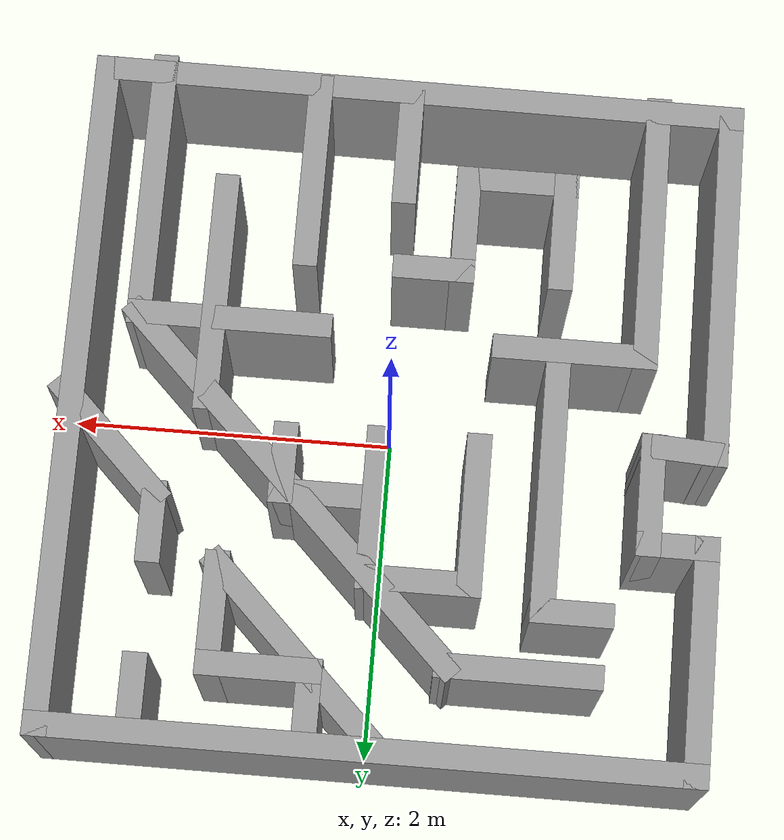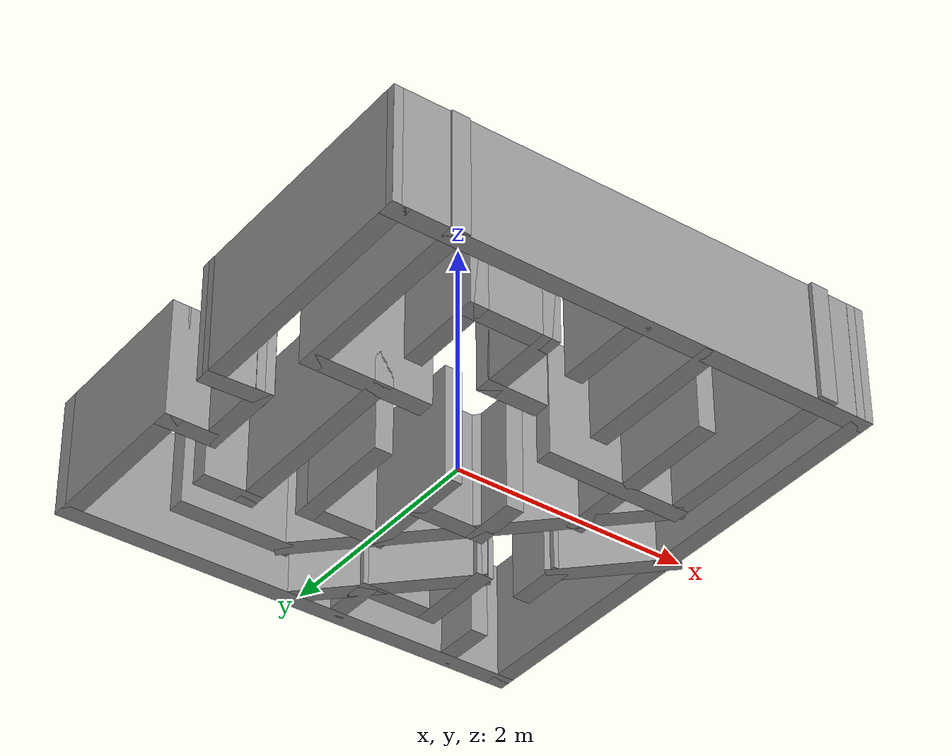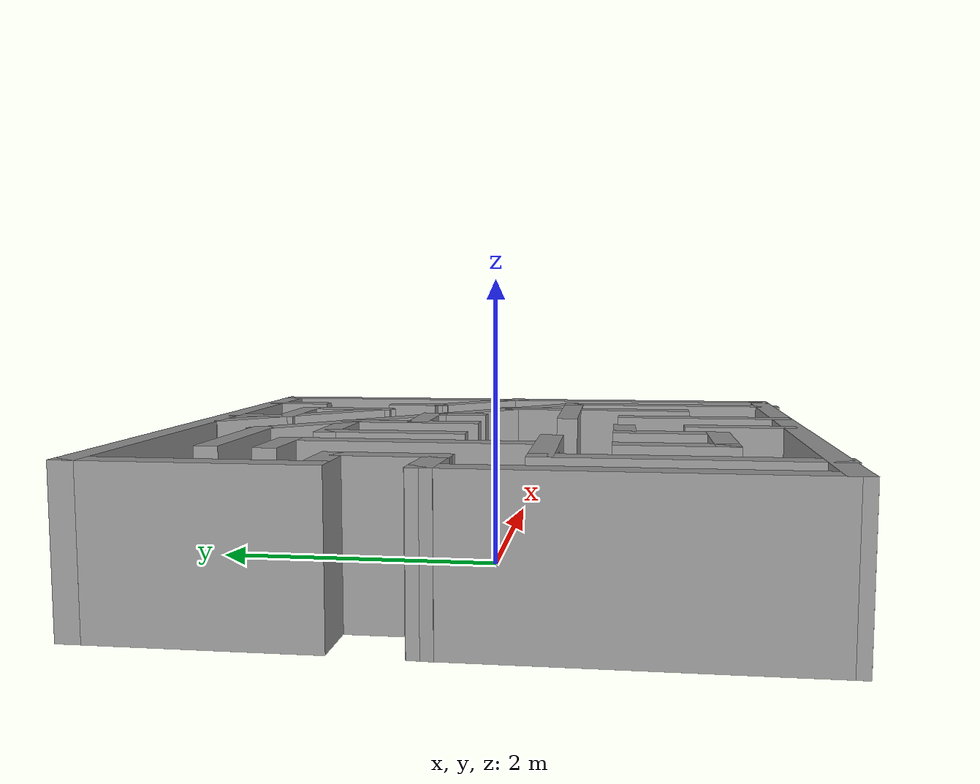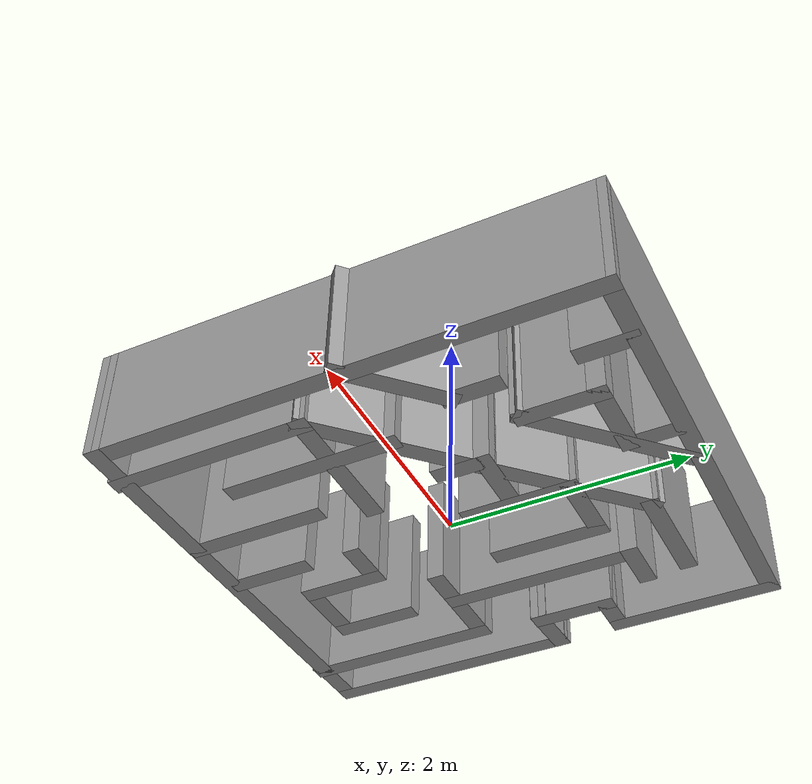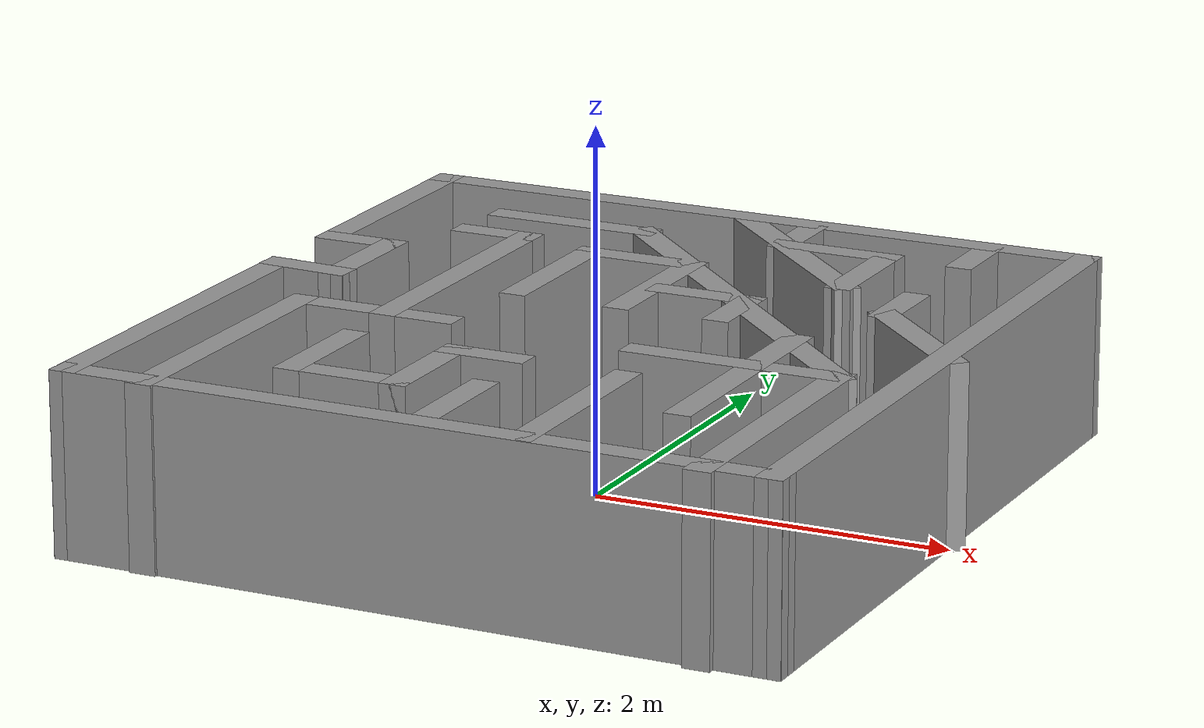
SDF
<?xml version='1.0'?>
<sdf version='1.6'>
  <model name='mazeSWY'>
    <pose frame=''>0.013574 -0.002409 0 0 -0 0</pose>
    <link name='Wall_0'>
      <collision name='Wall_0_Collision'>
        <geometry>
          <box>
            <size>4.03012 0.15 1</size>
          </box>
        </geometry>
        <pose frame=''>0 0 0.5 0 -0 0</pose>
      </collision>
      <visual name='Wall_0_Visual'>
        <pose frame=''>0 0 0.5 0 -0 0</pose>
        <geometry>
          <box>
            <size>4.03012 0.15 1</size>
          </box>
        </geometry>
        <material>
          <script>
            <uri>file://media/materials/scripts/gazebo.material</uri>
            <name>Gazebo/Grey</name>
          </script>
          <ambient>1 1 1 1</ambient>
        </material>
      </visual>
      <pose frame=''>-0.033574 -2.02259 0 0 0 -0.007732</pose>
    </link>
    <link name='Wall_11'>
      <collision name='Wall_11_Collision'>
        <geometry>
          <box>
            <size>1.75 0.15 1</size>
          </box>
        </geometry>
        <pose frame=''>0 0 0.5 0 -0 0</pose>
      </collision>
      <visual name='Wall_11_Visual'>
        <pose frame=''>0 0 0.5 0 -0 0</pose>
        <geometry>
          <box>
            <size>1.75 0.15 1</size>
          </box>
        </geometry>
        <material>
          <script>
            <uri>file://media/materials/scripts/gazebo.material</uri>
            <name>Gazebo/Grey</name>
          </script>
          <ambient>1 1 1 1</ambient>
        </material>
      </visual>
      <pose frame=''>-1.52357 -1.22759 0 0 -0 1.5708</pose>
    </link>

    <link name='Wall_2'>
      <collision name='Wall_2_Collision'>
        <geometry>
          <box>
            <size>4.26001 0.15 1</size>
          </box>
        </geometry>
        <pose frame=''>0 0 0.5 0 -0 0</pose>
      </collision>
      <visual name='Wall_2_Visual'>
        <pose frame=''>0 0 0.5 0 -0 0</pose>
        <geometry>
          <box>
            <size>4.26001 0.15 1</size>
          </box>
        </geometry>
        <material>
          <script>
            <uri>file://media/materials/scripts/gazebo.material</uri>
            <name>Gazebo/Grey</name>
          </script>
          <ambient>1 1 1 1</ambient>
        </material>
      </visual>
      <pose frame=''>1.90143 0.017409 0 0 -0 1.57323</pose>
    </link>
    <link name='Wall_205'>
      <collision name='Wall_205_Collision'>
        <geometry>
          <box>
            <size>1 0.15 1</size>
          </box>
        </geometry>
        <pose frame=''>0 0 0.5 0 -0 0</pose>
      </collision>
      <visual name='Wall_205_Visual'>
        <pose frame=''>0 0 0.5 0 -0 0</pose>
        <geometry>
          <box>
            <size>1 0.15 1</size>
          </box>
        </geometry>
        <material>
          <script>
            <uri>file://media/materials/scripts/gazebo.material</uri>
            <name>Gazebo/Grey</name>
          </script>
          <ambient>1 1 1 1</ambient>
        </material>
      </visual>
      <pose frame=''>-1.09857 -0.427591 0 0 -0 0</pose>
    </link>
    <link name='Wall_21'>
      <collision name='Wall_21_Collision'>
        <geometry>
          <box>
            <size>1.75 0.15 1</size>
          </box>
        </geometry>
        <pose frame=''>0 0 0.5 0 -0 0</pose>
      </collision>
      <visual name='Wall_21_Visual'>
        <pose frame=''>0 0 0.5 0 -0 0</pose>
        <geometry>
          <box>
            <size>1.75 0.15 1</size>
          </box>
        </geometry>
        <material>
          <script>
            <uri>file://media/materials/scripts/gazebo.material</uri>
            <name>Gazebo/Grey</name>
          </script>
          <ambient>1 1 1 1</ambient>
        </material>
      </visual>
      <pose frame=''>-1.00357 0.372409 0 0 -0 1.5708</pose>
    </link>
    <link name='Wall_22'>
      <collision name='Wall_22_Collision'>
        <geometry>
          <box>
            <size>0.5 0.15 1</size>
          </box>
        </geometry>
        <pose frame=''>0 0 0.5 0 -0 0</pose>
      </collision>
      <visual name='Wall_22_Visual'>
        <pose frame=''>0 0 0.5 0 -0 0</pose>
        <geometry>
          <box>
            <size>0.5 0.15 1</size>
          </box>
        </geometry>
        <material>
          <script>
            <uri>file://media/materials/scripts/gazebo.material</uri>
            <name>Gazebo/Grey</name>
          </script>
          <ambient>1 1 1 1</ambient>
        </material>
      </visual>
      <pose frame=''>-1.17857 1.17241 0 0 -0 3.14159</pose>
    </link>
    <link name='Wall_24'>
      <collision name='Wall_24_Collision'>
        <geometry>
          <box>
            <size>0.75 0.15 1</size>
          </box>
        </geometry>
        <pose frame=''>0 0 0.5 0 -0 0</pose>
      </collision>
      <visual name='Wall_24_Visual'>
        <pose frame=''>0 0 0.5 0 -0 0</pose>
        <geometry>
          <box>
            <size>0.75 0.15 1</size>
          </box>
        </geometry>
        <material>
          <script>
            <uri>file://media/materials/scripts/gazebo.material</uri>
            <name>Gazebo/Grey</name>
          </script>
          <ambient>1 1 1 1</ambient>
        </material>
      </visual>
      <pose frame=''>-0.983574 -1.18759 0 0 0 -1.5708</pose>
    </link>
    <link name='Wall_25'>
      <collision name='Wall_25_Collision'>
        <geometry>
          <box>
            <size>0.75 0.15 1</size>
          </box>
        </geometry>
        <pose frame=''>0 0 0.5 0 -0 0</pose>
      </collision>
      <visual name='Wall_25_Visual'>
        <pose frame=''>0 0 0.5 0 -0 0</pose>
        <geometry>
          <box>
            <size>0.75 0.15 1</size>
          </box>
        </geometry>
        <material>
          <script>
            <uri>file://media/materials/scripts/gazebo.material</uri>
            <name>Gazebo/Grey</name>
          </script>
          <ambient>1 1 1 1</ambient>
        </material>
      </visual>
      <pose frame=''>-0.683574 -1.48759 0 0 -0 0</pose>
    </link>
    <link name='Wall_26'>
      <collision name='Wall_26_Collision'>
        <geometry>
          <box>
            <size>0.75 0.15 1</size>
          </box>
        </geometry>
        <pose frame=''>0 0 0.5 0 -0 0</pose>
      </collision>
      <visual name='Wall_26_Visual'>
        <pose frame=''>0 0 0.5 0 -0 0</pose>
        <geometry>
          <box>
            <size>0.75 0.15 1</size>
          </box>
        </geometry>
        <material>
          <script>
            <uri>file://media/materials/scripts/gazebo.material</uri>
            <name>Gazebo/Grey</name>
          </script>
          <ambient>1 1 1 1</ambient>
        </material>
      </visual>
      <pose frame=''>-0.383574 -1.18759 0 0 -0 1.5708</pose>
    </link>
    <link name='Wall_27'>
      <collision name='Wall_27_Collision'>
        <geometry>
          <box>
            <size>0.5 0.15 1</size>
          </box>
        </geometry>
        <pose frame=''>0 0 0.5 0 -0 0</pose>
      </collision>
      <visual name='Wall_27_Visual'>
        <pose frame=''>0 0 0.5 0 -0 0</pose>
        <geometry>
          <box>
            <size>0.5 0.15 1</size>
          </box>
        </geometry>
        <material>
          <script>
            <uri>file://media/materials/scripts/gazebo.material</uri>
            <name>Gazebo/Grey</name>
          </script>
          <ambient>1 1 1 1</ambient>
        </material>
      </visual>
      <pose frame=''>-0.208574 -0.887591 0 0 -0 0</pose>
    </link>
    <link name='Wall_29'>
      <collision name='Wall_29_Collision'>
        <geometry>
          <box>
            <size>1 0.15 1</size>
          </box>
        </geometry>
        <pose frame=''>0 0 0.5 0 -0 0</pose>
      </collision>
      <visual name='Wall_29_Visual'>
        <pose frame=''>0 0 0.5 0 -0 0</pose>
        <geometry>
          <box>
            <size>1 0.15 1</size>
          </box>
        </geometry>
        <material>
          <script>
            <uri>file://media/materials/scripts/gazebo.material</uri>
            <name>Gazebo/Grey</name>
          </script>
          <ambient>1 1 1 1</ambient>
        </material>
      </visual>
      <pose frame=''>-0.888574 1.54241 0 0 -0 0</pose>
    </link>
    <link name='Wall_30'>
      <collision name='Wall_30_Collision'>
        <geometry>
          <box>
            <size>3 0.15 1</size>
          </box>
        </geometry>
        <pose frame=''>0 0 0.5 0 -0 0</pose>
      </collision>
      <visual name='Wall_30_Visual'>
        <pose frame=''>0 0 0.5 0 -0 0</pose>
        <geometry>
          <box>
            <size>3 0.15 1</size>
          </box>
        </geometry>
        <material>
          <script>
            <uri>file://media/materials/scripts/gazebo.material</uri>
            <name>Gazebo/Grey</name>
          </script>
          <ambient>1 1 1 1</ambient>
        </material>
      </visual>
      <pose frame=''>0.543926 0.534909 0 0 0 -0.785398</pose>
    </link>
    <link name='Wall_31'>
      <collision name='Wall_31_Collision'>
        <geometry>
          <box>
            <size>1.75 0.15 1</size>
          </box>
        </geometry>
        <pose frame=''>0 0 0.5 0 -0 0</pose>
      </collision>
      <visual name='Wall_31_Visual'>
        <pose frame=''>0 0 0.5 0 -0 0</pose>
        <geometry>
          <box>
            <size>1.75 0.15 1</size>
          </box>
        </geometry>
        <material>
          <script>
            <uri>file://media/materials/scripts/gazebo.material</uri>
            <name>Gazebo/Grey</name>
          </script>
          <ambient>1 1 1 1</ambient>
        </material>
      </visual>
      <pose frame=''>1.55143 -1.27259 0 0 0 -1.5708</pose>
    </link>
    <link name='Wall_33'>
      <collision name='Wall_33_Collision'>
        <geometry>
          <box>
            <size>0.75 0.15 1</size>
          </box>
        </geometry>
        <pose frame=''>0 0 0.5 0 -0 0</pose>
      </collision>
      <visual name='Wall_33_Visual'>
        <pose frame=''>0 0 0.5 0 -0 0</pose>
        <geometry>
          <box>
            <size>0.75 0.15 1</size>
          </box>
        </geometry>
        <material>
          <script>
            <uri>file://media/materials/scripts/gazebo.material</uri>
            <name>Gazebo/Grey</name>
          </script>
          <ambient>1 1 1 1</ambient>
        </material>
      </visual>
      <pose frame=''>-0.263574 1.05241 0 0 -0 3.14159</pose>
    </link>
    <link name='Wall_34'>
      <collision name='Wall_34_Collision'>
        <geometry>
          <box>
            <size>1 0.15 1</size>
          </box>
        </geometry>
        <pose frame=''>0 0 0.5 0 -0 0</pose>
      </collision>
      <visual name='Wall_34_Visual'>
        <pose frame=''>0 0 0.5 0 -0 0</pose>
        <geometry>
          <box>
            <size>1 0.15 1</size>
          </box>
        </geometry>
        <material>
          <script>
            <uri>file://media/materials/scripts/gazebo.material</uri>
            <name>Gazebo/Grey</name>
          </script>
          <ambient>1 1 1 1</ambient>
        </material>
      </visual>
      <pose frame=''>-0.563574 0.627409 0 0 0 -1.5708</pose>
    </link>
    <link name='Wall_36'>
      <collision name='Wall_36_Collision'>
        <geometry>
          <box>
            <size>1 0.15 1</size>
          </box>
        </geometry>
        <pose frame=''>0 0 0.5 0 -0 0</pose>
      </collision>
      <visual name='Wall_36_Visual'>
        <pose frame=''>0 0 0.5 0 -0 0</pose>
        <geometry>
          <box>
            <size>1 0.15 1</size>
          </box>
        </geometry>
        <material>
          <script>
            <uri>file://media/materials/scripts/gazebo.material</uri>
            <name>Gazebo/Grey</name>
          </script>
          <ambient>1 1 1 1</ambient>
        </material>
      </visual>
      <pose frame=''>0.036426 0.627409 0 0 0 -1.5708</pose>
    </link>
    <link name='Wall_38'>
      <collision name='Wall_38_Collision'>
        <geometry>
          <box>
            <size>0.64 0.15 1</size>
          </box>
        </geometry>
        <pose frame=''>0 0 0.5 0 -0 0</pose>
      </collision>
      <visual name='Wall_38_Visual'>
        <pose frame=''>0 0 0.5 0 -0 0</pose>
        <geometry>
          <box>
            <size>0.64 0.15 1</size>
          </box>
        </geometry>
        <material>
          <script>
            <uri>file://media/materials/scripts/gazebo.material</uri>
            <name>Gazebo/Grey</name>
          </script>
          <ambient>1 1 1 1</ambient>
        </material>
      </visual>
      <pose frame=''>0.351426 0.572409 0 0 -0 0</pose>
    </link>
    <link name='Wall_4'>
      <collision name='Wall_4_Collision'>
        <geometry>
          <box>
            <size>4 0.15 1</size>
          </box>
        </geometry>
        <pose frame=''>0 0 0.5 0 -0 0</pose>
      </collision>
      <visual name='Wall_4_Visual'>
        <pose frame=''>0 0 0.5 0 -0 0</pose>
        <geometry>
          <box>
            <size>4 0.15 1</size>
          </box>
        </geometry>
        <material>
          <script>
            <uri>file://media/materials/scripts/gazebo.material</uri>
            <name>Gazebo/Grey</name>
          </script>
          <ambient>1 1 1 1</ambient>
        </material>
      </visual>
      <pose frame=''>-0.028574 2.07241 0 0 -0 3.14159</pose>
    </link>
    <link name='Wall_42'>
      <collision name='Wall_42_Collision'>
        <geometry>
          <box>
            <size>0.5 0.15 1</size>
          </box>
        </geometry>
        <pose frame=''>0 0 0.5 0 -0 0</pose>
      </collision>
      <visual name='Wall_42_Visual'>
        <pose frame=''>0 0 0.5 0 -0 0</pose>
        <geometry>
          <box>
            <size>0.5 0.15 1</size>
          </box>
        </geometry>
        <material>
          <script>
            <uri>file://media/materials/scripts/gazebo.material</uri>
            <name>Gazebo/Grey</name>
          </script>
          <ambient>1 1 1 1</ambient>
        </material>
      </visual>
      <pose frame=''>0.596426 0.397409 0 0 0 -1.5708</pose>
    </link>
    <link name='Wall_44'>
      <collision name='Wall_44_Collision'>
        <geometry>
          <box>
            <size>1.5 0.15 1</size>
          </box>
        </geometry>
        <pose frame=''>0 0 0.5 0 -0 0</pose>
      </collision>
      <visual name='Wall_44_Visual'>
        <pose frame=''>0 0 0.5 0 -0 0</pose>
        <geometry>
          <box>
            <size>1.5 0.15 1</size>
          </box>
        </geometry>
        <material>
          <script>
            <uri>file://media/materials/scripts/gazebo.material</uri>
            <name>Gazebo/Grey</name>
          </script>
          <ambient>1 1 1 1</ambient>
        </material>
      </visual>
      <pose frame=''>1.09643 -0.642591 0 0 0 -1.5708</pose>
    </link>
    <link name='Wall_46'>
      <collision name='Wall_46_Collision'>
        <geometry>
          <box>
            <size>1.25 0.15 1</size>
          </box>
        </geometry>
        <pose frame=''>0 0 0.5 0 -0 0</pose>
      </collision>
      <visual name='Wall_46_Visual'>
        <pose frame=''>0 0 0.5 0 -0 0</pose>
        <geometry>
          <box>
            <size>1.25 0.15 1</size>
          </box>
        </geometry>
        <material>
          <script>
            <uri>file://media/materials/scripts/gazebo.material</uri>
            <name>Gazebo/Grey</name>
          </script>
          <ambient>1 1 1 1</ambient>
        </material>
      </visual>
      <pose frame=''>1.00143 -0.472591 0 0 -0 3.14159</pose>
    </link>
    <link name='Wall_48'>
      <collision name='Wall_48_Collision'>
        <geometry>
          <box>
            <size>1.25 0.15 1</size>
          </box>
        </geometry>
        <pose frame=''>0 0 0.5 0 -0 0</pose>
      </collision>
      <visual name='Wall_48_Visual'>
        <pose frame=''>0 0 0.5 0 -0 0</pose>
        <geometry>
          <box>
            <size>1.25 0.15 1</size>
          </box>
        </geometry>
        <material>
          <script>
            <uri>file://media/materials/scripts/gazebo.material</uri>
            <name>Gazebo/Grey</name>
          </script>
          <ambient>1 1 1 1</ambient>
        </material>
      </visual>
      <pose frame=''>0.576426 -1.46759 0 0 -0 1.5708</pose>
    </link>
    <link name='Wall_5'>
      <collision name='Wall_5_Collision'>
        <geometry>
          <box>
            <size>1.5 0.15 1</size>
          </box>
        </geometry>
        <pose frame=''>0 0 0.5 0 -0 0</pose>
      </collision>
      <visual name='Wall_5_Visual'>
        <pose frame=''>0 0 0.5 0 -0 0</pose>
        <geometry>
          <box>
            <size>1.5 0.15 1</size>
          </box>
        </geometry>
        <material>
          <script>
            <uri>file://media/materials/scripts/gazebo.material</uri>
            <name>Gazebo/Grey</name>
          </script>
          <ambient>1 1 1 1</ambient>
        </material>
      </visual>
      <pose frame=''>-1.95357 1.39741 0 0 0 -1.5708</pose>
    </link>
    <link name='Wall_50'>
      <collision name='Wall_50_Collision'>
        <geometry>
          <box>
            <size>0.75 0.15 1</size>
          </box>
        </geometry>
        <pose frame=''>0 0 0.5 0 -0 0</pose>
      </collision>
      <visual name='Wall_50_Visual'>
        <pose frame=''>0 0 0.5 0 -0 0</pose>
        <geometry>
          <box>
            <size>0.75 0.15 1</size>
          </box>
        </geometry>
        <material>
          <script>
            <uri>file://media/materials/scripts/gazebo.material</uri>
            <name>Gazebo/Grey</name>
          </script>
          <ambient>1 1 1 1</ambient>
        </material>
      </visual>
      <pose frame=''>0.006426 -1.66759 0 0 -0 1.5708</pose>
    </link>
    <link name='Wall_52'>
      <collision name='Wall_52_Collision'>
        <geometry>
          <box>
            <size>1 0.15 1</size>
          </box>
        </geometry>
        <pose frame=''>0 0 0.5 0 -0 0</pose>
      </collision>
      <visual name='Wall_52_Visual'>
        <pose frame=''>0 0 0.5 0 -0 0</pose>
        <geometry>
          <box>
            <size>1 0.15 1</size>
          </box>
        </geometry>
        <material>
          <script>
            <uri>file://media/materials/scripts/gazebo.material</uri>
            <name>Gazebo/Grey</name>
          </script>
          <ambient>1 1 1 1</ambient>
        </material>
      </visual>
      <pose frame=''>1.64593 0.342909 0 0 -0 2.35619</pose>
    </link>
    <link name='Wall_53'>
      <collision name='Wall_53_Collision'>
        <geometry>
          <box>
            <size>0.5 0.15 1</size>
          </box>
        </geometry>
        <pose frame=''>0 0 0.5 0 -0 0</pose>
      </collision>
      <visual name='Wall_53_Visual'>
        <pose frame=''>0 0 0.5 0 -0 0</pose>
        <geometry>
          <box>
            <size>0.5 0.15 1</size>
          </box>
        </geometry>
        <material>
          <script>
            <uri>file://media/materials/scripts/gazebo.material</uri>
            <name>Gazebo/Grey</name>
          </script>
          <ambient>1 1 1 1</ambient>
        </material>
      </visual>
      <pose frame=''>1.34543 0.818409 0 0 -0 1.5708</pose>
    </link>
    <link name='Wall_55'>
      <collision name='Wall_55_Collision'>
        <geometry>
          <box>
            <size>0.5 0.15 1</size>
          </box>
        </geometry>
        <pose frame=''>0 0 0.5 0 -0 0</pose>
      </collision>
      <visual name='Wall_55_Visual'>
        <pose frame=''>0 0 0.5 0 -0 0</pose>
        <geometry>
          <box>
            <size>0.5 0.15 1</size>
          </box>
        </geometry>
        <material>
          <script>
            <uri>file://media/materials/scripts/gazebo.material</uri>
            <name>Gazebo/Grey</name>
          </script>
          <ambient>1 1 1 1</ambient>
        </material>
      </visual>
      <pose frame=''>1.35643 1.85741 0 0 0 -1.5708</pose>
    </link>
    <link name='Wall_57'>
      <collision name='Wall_57_Collision'>
        <geometry>
          <box>
            <size>1.50057 0.15 1</size>
          </box>
        </geometry>
        <pose frame=''>0 0 0.5 0 -0 0</pose>
      </collision>
      <visual name='Wall_57_Visual'>
        <pose frame=''>0 0 0.5 0 -0 0</pose>
        <geometry>
          <box>
            <size>1.50057 0.15 1</size>
          </box>
        </geometry>
        <material>
          <script>
            <uri>file://media/materials/scripts/gazebo.material</uri>
            <name>Gazebo/Grey</name>
          </script>
          <ambient>1 1 1 1</ambient>
        </material>
      </visual>
      <pose frame=''>0.453926 1.51491 0 0 0 -0.785398</pose>
    </link>
    <link name='Wall_58'>
      <collision name='Wall_58_Collision'>
        <geometry>
          <box>
            <size>0.750406 0.15 1</size>
          </box>
        </geometry>
        <pose frame=''>0 0 0.5 0 -0 0</pose>
      </collision>
      <visual name='Wall_58_Visual'>
        <pose frame=''>0 0 0.5 0 -0 0</pose>
        <geometry>
          <box>
            <size>0.750406 0.15 1</size>
          </box>
        </geometry>
        <material>
          <script>
            <uri>file://media/materials/scripts/gazebo.material</uri>
            <name>Gazebo/Grey</name>
          </script>
          <ambient>1 1 1 1</ambient>
        </material>
      </visual>
      <pose frame=''>0.931426 1.33741 0 0 -0 1.5708</pose>
    </link>
    <link name='Wall_59'>
      <collision name='Wall_59_Collision'>
        <geometry>
          <box>
            <size>0.75 0.15 1</size>
          </box>
        </geometry>
        <pose frame=''>0 0 0.5 0 -0 0</pose>
      </collision>
      <visual name='Wall_59_Visual'>
        <pose frame=''>0 0 0.5 0 -0 0</pose>
        <geometry>
          <box>
            <size>0.75 0.15 1</size>
          </box>
        </geometry>
        <material>
          <script>
            <uri>file://media/materials/scripts/gazebo.material</uri>
            <name>Gazebo/Grey</name>
          </script>
          <ambient>1 1 1 1</ambient>
        </material>
      </visual>
      <pose frame=''>0.631426 1.63741 0 0 -0 3.14159</pose>
    </link>
    <link name='Wall_6'>
      <collision name='Wall_6_Collision'>
        <geometry>
          <box>
            <size>0.5 0.15 1</size>
          </box>
        </geometry>
        <pose frame=''>0 0 0.5 0 -0 0</pose>
      </collision>
      <visual name='Wall_6_Visual'>
        <pose frame=''>0 0 0.5 0 -0 0</pose>
        <geometry>
          <box>
            <size>0.5 0.15 1</size>
          </box>
        </geometry>
        <material>
          <script>
            <uri>file://media/materials/scripts/gazebo.material</uri>
            <name>Gazebo/Grey</name>
          </script>
          <ambient>1 1 1 1</ambient>
        </material>
      </visual>
      <pose frame=''>-1.77857 0.722409 0 0 -0 0</pose>
    </link>
    <link name='Wall_60'>
      <collision name='Wall_60_Collision'>
        <geometry>
          <box>
            <size>0.5 0.15 1</size>
          </box>
        </geometry>
        <pose frame=''>0 0 0.5 0 -0 0</pose>
      </collision>
      <visual name='Wall_60_Visual'>
        <pose frame=''>0 0 0.5 0 -0 0</pose>
        <geometry>
          <box>
            <size>0.5 0.15 1</size>
          </box>
        </geometry>
        <material>
          <script>
            <uri>file://media/materials/scripts/gazebo.material</uri>
            <name>Gazebo/Grey</name>
          </script>
          <ambient>1 1 1 1</ambient>
        </material>
      </visual>
      <pose frame=''>0.331426 1.81241 0 0 -0 1.5708</pose>
    </link>
    <link name='Wall_7'>
      <collision name='Wall_7_Collision'>
        <geometry>
          <box>
            <size>0.75 0.15 1</size>
          </box>
        </geometry>
        <pose frame=''>0 0 0.5 0 -0 0</pose>
      </collision>
      <visual name='Wall_7_Visual'>
        <pose frame=''>0 0 0.5 0 -0 0</pose>
        <geometry>
          <box>
            <size>0.75 0.15 1</size>
          </box>
        </geometry>
        <material>
          <script>
            <uri>file://media/materials/scripts/gazebo.material</uri>
            <name>Gazebo/Grey</name>
          </script>
          <ambient>1 1 1 1</ambient>
        </material>
      </visual>
      <pose frame=''>-1.60357 0.422409 0 0 0 -1.5708</pose>
    </link>
    <link name='Wall_8'>
      <collision name='Wall_8_Collision'>
        <geometry>
          <box>
            <size>0.52054 0.15 1</size>
          </box>
        </geometry>
        <pose frame=''>0 0 0.5 0 -0 0</pose>
      </collision>
      <visual name='Wall_8_Visual'>
        <pose frame=''>0 0 0.5 0 -0 0</pose>
        <geometry>
          <box>
            <size>0.52054 0.15 1</size>
          </box>
        </geometry>
        <material>
          <script>
            <uri>file://media/materials/scripts/gazebo.material</uri>
            <name>Gazebo/Grey</name>
          </script>
          <ambient>1 1 1 1</ambient>
        </material>
      </visual>
      <pose frame=''>-1.78857 0.132409 0 0 -0 3.08759</pose>
    </link>
    <link name='Wall_9'>
      <collision name='Wall_9_Collision'>
        <geometry>
          <box>
            <size>2.3 0.15 1</size>
          </box>
        </geometry>
        <pose frame=''>0 0 0.5 0 -0 0</pose>
      </collision>
      <visual name='Wall_9_Visual'>
        <pose frame=''>0 0 0.5 0 -0 0</pose>
        <geometry>
          <box>
            <size>2.3 0.15 1</size>
          </box>
        </geometry>
        <material>
          <script>
            <uri>file://media/materials/scripts/gazebo.material</uri>
            <name>Gazebo/Grey</name>
          </script>
          <ambient>1 1 1 1</ambient>
        </material>
      </visual>
      <pose frame=''>-1.97357 -0.932591 0 0 0 -1.5708</pose>
    </link>
    <static>1</static>
  </model>
</sdf>
